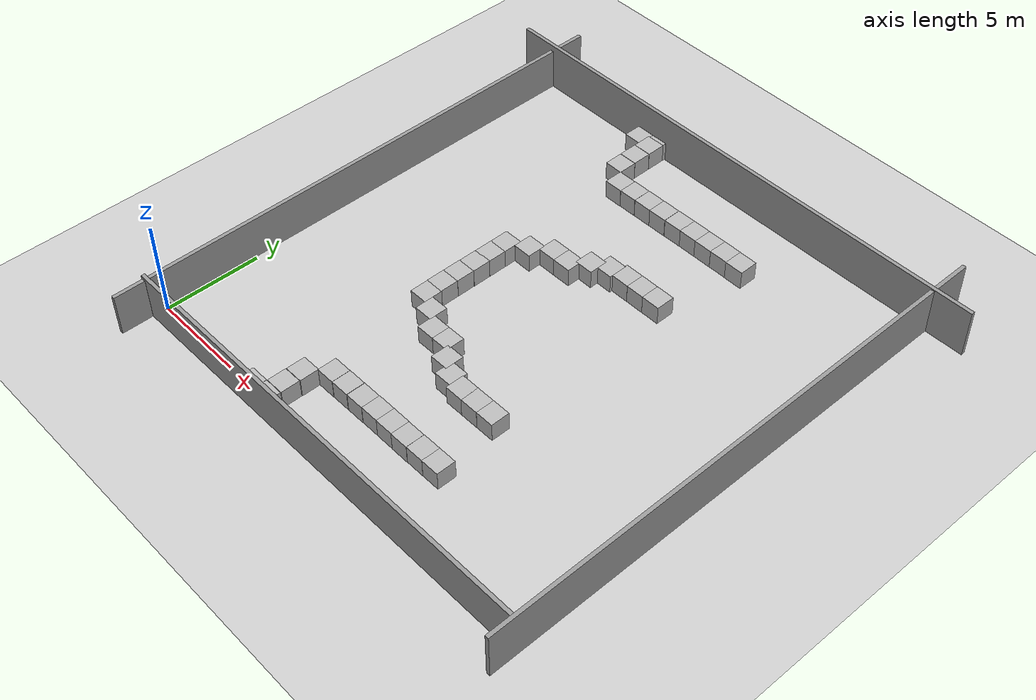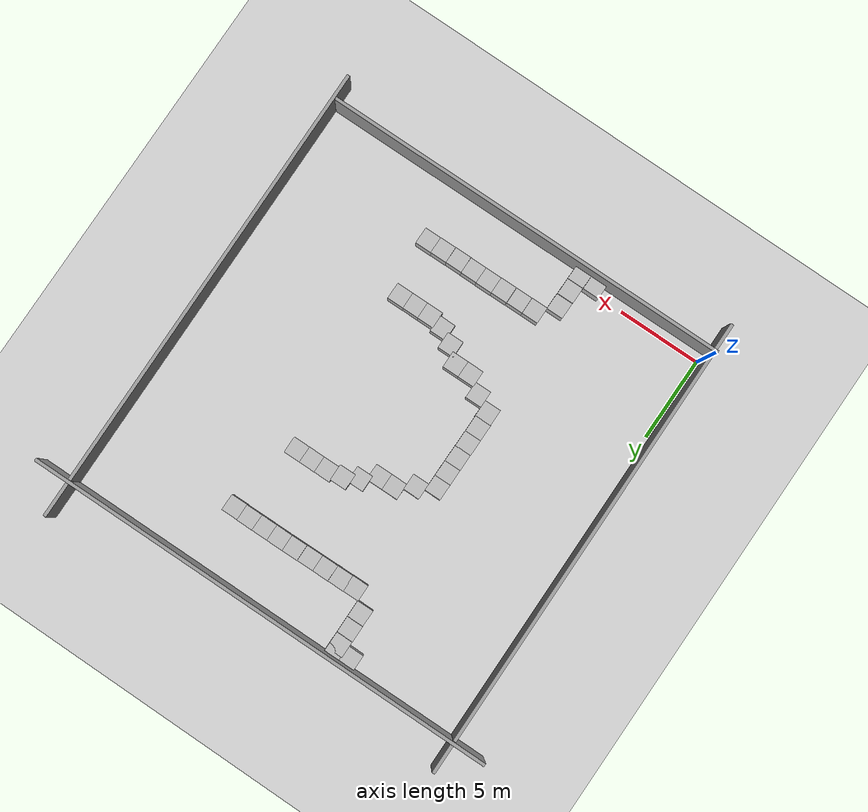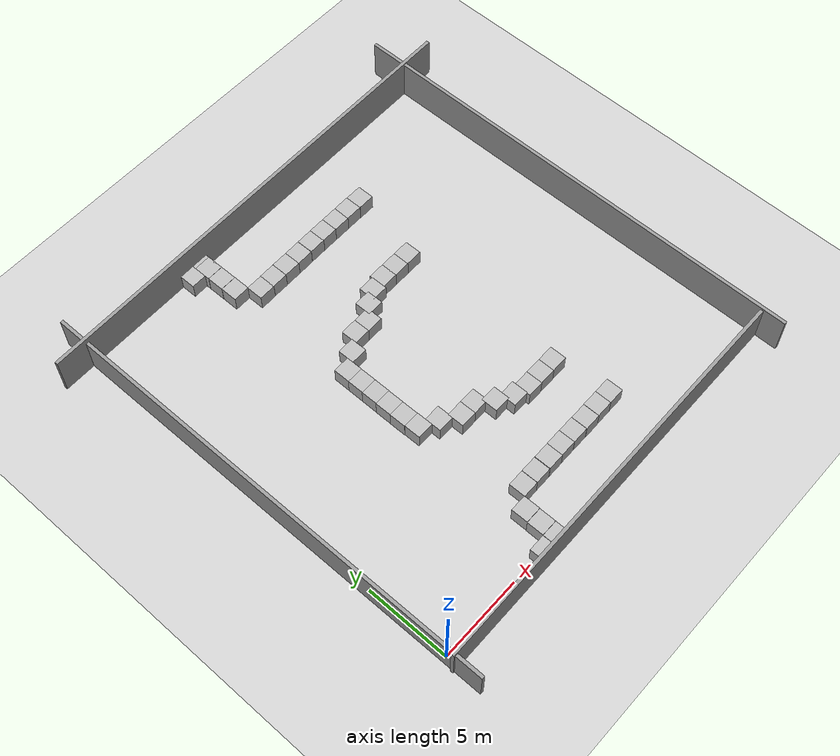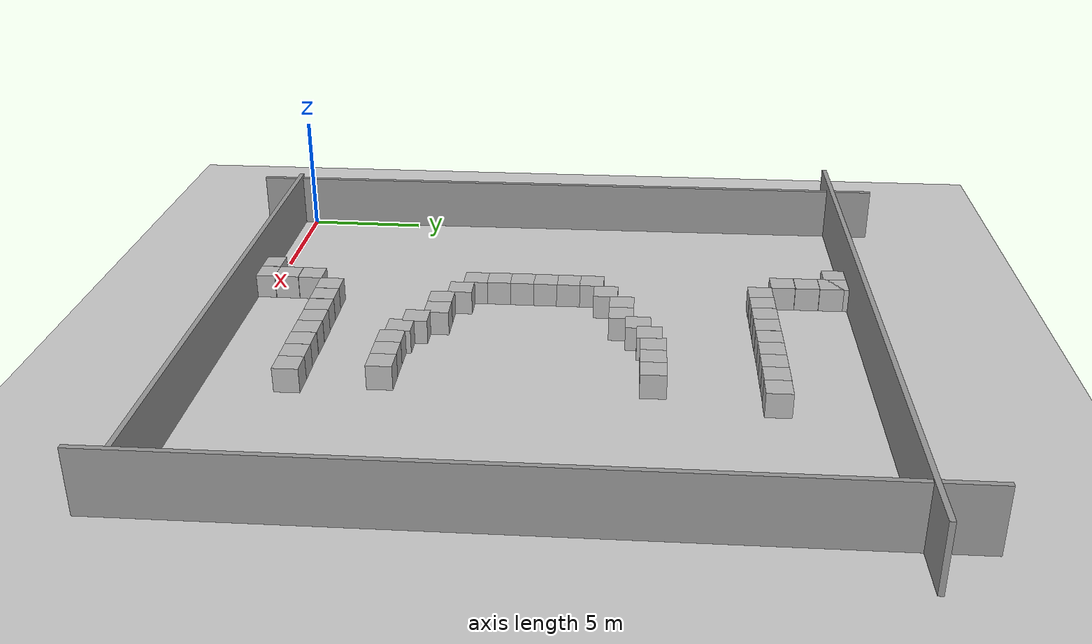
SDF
<sdf version="1.6">
 <world name="default">
  <light name="sun" type="directional">
   <pose>0 0 10 0 -0 0</pose>
   <diffuse>0.8 0.8 0.8 1</diffuse>
   <specular>0.2 0.2 0.2 1</specular>
   <attenuation>
    <range>1000</range>
    <constant>0.9</constant>
    <linear>0.01</linear>
    <quadratic>0.001</quadratic>
   </attenuation>
   <direction>-0.5 0.1 -0.9</direction>
  </light>
  <model name="ground_plane">
   <static>1</static>
   <link name="link">
    <collision name="collision">
     <geometry><plane><normal>0 0 1</normal><size>100 100</size></plane></geometry>
     <surface><friction><ode><mu>50</mu><mu2>25</mu2></ode></friction></surface>
    </collision>
    <visual name="visual">
     <cast_shadows>0</cast_shadows>
     <geometry><plane><normal>0 0 1</normal><size>100 100</size></plane></geometry>
     <material>
      <script><uri>file://media/materials/scripts/gazebo.material</uri><name>Gazebo/Grey</name></script>
     </material>
    </visual>
    <velocity_decay><linear>0</linear><angular>0</angular></velocity_decay>
   </link>
  </model>
  <physics name="default_physics" default="0" type="ode">
   <max_step_size>0.001</max_step_size>
   <real_time_factor>1</real_time_factor>
   <real_time_update_rate>1000</real_time_update_rate>
  </physics>
  <scene><ambient>0.4 0.4 0.4 1</ambient><background>0.7 0.7 0.7 1</background><shadows>0</shadows></scene>
  <spherical_coordinates>
   <surface_model>EARTH_WGS84</surface_model>
   <latitude_deg>0</latitude_deg>
   <longitude_deg>0</longitude_deg>
   <elevation>0</elevation>
   <heading_deg>0</heading_deg>
  </spherical_coordinates>
  <gravity>0 0 -9.8</gravity>
  <magnetic_field>6e-06 2.3e-05 -4.2e-05</magnetic_field>
  <atmosphere type="adiabatic"/>
  <model name="grey_wall_6_0_clone">
   <link name="link">
    <pose>11.2261 0.490097 1.4 0 -0 0</pose>
    <velocity_decay><linear>0</linear><angular>0</angular></velocity_decay>
    <inertial>
     <inertia><ixx>nan</ixx><ixy>0</ixy><ixz>0</ixz><iyy>nan</iyy><iyz>0</iyz><izz>nan</izz></inertia>
     <mass>0</mass>
    </inertial>
    <visual name="visual">
     <cast_shadows>0</cast_shadows>
     <geometry><box><size>28.8883 0.2 2.63649</size></box></geometry>
     <material>
      <script>
       <uri>model://grey_wall/materials/scripts</uri>
       <uri>model://grey_wall/materials/textures</uri>
       <name>vrc/grey_wall</name>
      </script>
      <ambient>1 1 1 1</ambient>
      <diffuse>1 1 1 1</diffuse>
      <specular>0 0 0 1</specular>
      <emissive>0 0 0 1</emissive>
     </material>
    </visual>
    <collision name="collision">
     <geometry><box><size>28.8883 0.2 2.63649</size></box></geometry>
     <surface>
      <friction>
       <ode><mu>1</mu><mu2>1</mu2><fdir1>0 0 0</fdir1><slip1>0</slip1><slip2>0</slip2></ode>
       <torsional>
        <coefficient>1</coefficient>
        <patch_radius>0</patch_radius>
        <surface_radius>0</surface_radius>
        <use_patch_radius>1</use_patch_radius>
        <ode><slip>0</slip></ode>
       </torsional>
      </friction>
      <bounce><restitution_coefficient>0</restitution_coefficient><threshold>1e+06</threshold></bounce>
      <contact>
       <collide_without_contact>0</collide_without_contact>
       <collide_without_contact_bitmask>1</collide_without_contact_bitmask>
       <collide_bitmask>1</collide_bitmask>
       <ode>
        <soft_cfm>0</soft_cfm>
        <soft_erp>0.2</soft_erp>
        <kp>1e+13</kp>
        <kd>1</kd>
        <max_vel>0.01</max_vel>
        <min_depth>0</min_depth>
       </ode>
       <bullet>
        <split_impulse>1</split_impulse>
        <split_impulse_penetration_threshold>-0.01</split_impulse_penetration_threshold>
        <soft_cfm>0</soft_cfm>
        <soft_erp>0.2</soft_erp>
        <kp>1e+13</kp>
        <kd>1</kd>
       </bullet>
      </contact>
     </surface>
    </collision>
   </link>
   <static>1</static>
   <pose>0.259326 0.833086 -0.505022 0 -0 1.57597</pose>
  </model>
  <model name="grey_wall_6_0_clone_0">
   <link name="link">
    <pose>11.2261 0.490097 1.4 0 -0 0</pose>
    <velocity_decay><linear>0</linear><angular>0</angular></velocity_decay>
    <inertial>
     <inertia><ixx>nan</ixx><ixy>0</ixy><ixz>0</ixz><iyy>nan</iyy><iyz>0</iyz><izz>nan</izz></inertia>
     <mass>0</mass>
    </inertial>
    <visual name="visual">
     <cast_shadows>0</cast_shadows>
     <geometry><box><size>28.8883 0.2 2.63649</size></box></geometry>
     <material>
      <script>
       <uri>model://grey_wall/materials/scripts</uri>
       <uri>model://grey_wall/materials/textures</uri>
       <name>vrc/grey_wall</name>
      </script>
      <ambient>1 1 1 1</ambient>
      <diffuse>1 1 1 1</diffuse>
      <specular>0 0 0 1</specular>
      <emissive>0 0 0 1</emissive>
     </material>
    </visual>
    <collision name="collision">
     <geometry><box><size>28.8883 0.2 2.63649</size></box></geometry>
     <surface>
      <friction>
       <ode><mu>1</mu><mu2>1</mu2><fdir1>0 0 0</fdir1><slip1>0</slip1><slip2>0</slip2></ode>
       <torsional>
        <coefficient>1</coefficient>
        <patch_radius>0</patch_radius>
        <surface_radius>0</surface_radius>
        <use_patch_radius>1</use_patch_radius>
        <ode><slip>0</slip></ode>
       </torsional>
      </friction>
      <bounce><restitution_coefficient>0</restitution_coefficient><threshold>1e+06</threshold></bounce>
      <contact>
       <collide_without_contact>0</collide_without_contact>
       <collide_without_contact_bitmask>1</collide_without_contact_bitmask>
       <collide_bitmask>1</collide_bitmask>
       <ode>
        <soft_cfm>0</soft_cfm>
        <soft_erp>0.2</soft_erp>
        <kp>1e+13</kp>
        <kd>1</kd>
        <max_vel>0.01</max_vel>
        <min_depth>0</min_depth>
       </ode>
       <bullet>
        <split_impulse>1</split_impulse>
        <split_impulse_penetration_threshold>-0.01</split_impulse_penetration_threshold>
        <soft_cfm>0</soft_cfm>
        <soft_erp>0.2</soft_erp>
        <kp>1e+13</kp>
        <kd>1</kd>
       </bullet>
      </contact>
     </surface>
    </collision>
   </link>
   <static>1</static>
   <pose>23.3329 25.2467 -0.15098 0 0 -3.13457</pose>
  </model>
  <model name="grey_wall_6_0_clone_clone">
   <link name="link">
    <pose>11.2261 0.490097 1.4 0 -0 0</pose>
    <velocity_decay><linear>0</linear><angular>0</angular></velocity_decay>
    <inertial>
     <inertia><ixx>nan</ixx><ixy>0</ixy><ixz>0</ixz><iyy>nan</iyy><iyz>0</iyz><izz>nan</izz></inertia>
     <mass>0</mass>
    </inertial>
    <visual name="visual">
     <cast_shadows>0</cast_shadows>
     <geometry><box><size>28.8883 0.2 2.63649</size></box></geometry>
     <material>
      <script>
       <uri>model://grey_wall/materials/scripts</uri>
       <uri>model://grey_wall/materials/textures</uri>
       <name>vrc/grey_wall</name>
      </script>
      <ambient>1 1 1 1</ambient>
      <diffuse>1 1 1 1</diffuse>
      <specular>0 0 0 1</specular>
      <emissive>0 0 0 1</emissive>
     </material>
    </visual>
    <collision name="collision">
     <geometry><box><size>28.8883 0.2 2.63649</size></box></geometry>
     <surface>
      <friction>
       <ode><mu>1</mu><mu2>1</mu2><fdir1>0 0 0</fdir1><slip1>0</slip1><slip2>0</slip2></ode>
       <torsional>
        <coefficient>1</coefficient>
        <patch_radius>0</patch_radius>
        <surface_radius>0</surface_radius>
        <use_patch_radius>1</use_patch_radius>
        <ode><slip>0</slip></ode>
       </torsional>
      </friction>
      <bounce><restitution_coefficient>0</restitution_coefficient><threshold>1e+06</threshold></bounce>
      <contact>
       <collide_without_contact>0</collide_without_contact>
       <collide_without_contact_bitmask>1</collide_without_contact_bitmask>
       <collide_bitmask>1</collide_bitmask>
       <ode>
        <soft_cfm>0</soft_cfm>
        <soft_erp>0.2</soft_erp>
        <kp>1e+13</kp>
        <kd>1</kd>
        <max_vel>0.01</max_vel>
        <min_depth>0</min_depth>
       </ode>
       <bullet>
        <split_impulse>1</split_impulse>
        <split_impulse_penetration_threshold>-0.01</split_impulse_penetration_threshold>
        <soft_cfm>0</soft_cfm>
        <soft_erp>0.2</soft_erp>
        <kp>1e+13</kp>
        <kd>1</kd>
       </bullet>
      </contact>
     </surface>
    </collision>
   </link>
   <static>1</static>
   <pose>25.0346 1.33079 -0.2274 0 -0 1.57597</pose>
  </model>
  <model name="obby">
   <pose>8.00108 -0.189962 0.5 0 -0 0</pose>
   <static>1</static>
   <link name="link">
    <inertial>
     <mass>1</mass>
     <inertia><ixx>0.083</ixx><ixy>0</ixy><ixz>0</ixz><iyy>0.083</iyy><iyz>0</iyz><izz>0.083</izz></inertia>
    </inertial>
    <collision name="collision"><geometry><box><size>1 1 1</size></box></geometry></collision>
    <visual name="visual"><geometry><box><size>1 1 1</size></box></geometry></visual>
   </link>
  </model>
  <model name="obby1_clone">
   <pose>8.00356 0.82391 0.499995 0 -1e-05 0.007022</pose>
   <static>1</static>
   <link name="link">
    <inertial>
     <mass>1</mass>
     <inertia><ixx>0.083</ixx><ixy>0</ixy><ixz>0</ixz><iyy>0.083</iyy><iyz>0</iyz><izz>0.083</izz></inertia>
    </inertial>
    <collision name="collision"><geometry><box><size>1 1 1</size></box></geometry></collision>
    <visual name="visual"><geometry><box><size>1 1 1</size></box></geometry></visual>
   </link>
  </model>
  <model name="obby1_clone_clone">
   <pose>8.01546 1.84075 0.499989 1e-05 -0 0.007022</pose>
   <static>1</static>
   <link name="link">
    <inertial>
     <mass>1</mass>
     <inertia><ixx>0.083</ixx><ixy>0</ixy><ixz>0</ixz><iyy>0.083</iyy><iyz>0</iyz><izz>0.083</izz></inertia>
    </inertial>
    <collision name="collision"><geometry><box><size>1 1 1</size></box></geometry></collision>
    <visual name="visual"><geometry><box><size>1 1 1</size></box></geometry></visual>
   </link>
  </model>
  <model name="obby1_clone_clone_0">
   <pose>9.00055 2.81608 0.499989 1e-05 -0 0.007022</pose>
   <static>1</static>
   <static>1</static>
   <link name="link">
    <inertial>
     <mass>1</mass>
     <inertia><ixx>0.083</ixx><ixy>0</ixy><ixz>0</ixz><iyy>0.083</iyy><iyz>0</iyz><izz>0.083</izz></inertia>
    </inertial>
    <collision name="collision"><geometry><box><size>1 1 1</size></box></geometry></collision>
    <visual name="visual"><geometry><box><size>1 1 1</size></box></geometry></visual>
   </link>
  </model>
  <model name="obby1_clone_clone_1">
   <pose>10.0086 2.83149 0.499989 1e-05 -0 0.007022</pose>
   <static>1</static>
   <link name="link">
    <inertial>
     <mass>1</mass>
     <inertia><ixx>0.083</ixx><ixy>0</ixy><ixz>0</ixz><iyy>0.083</iyy><iyz>0</iyz><izz>0.083</izz></inertia>
    </inertial>
    <collision name="collision"><geometry><box><size>1 1 1</size></box></geometry></collision>
    <visual name="visual"><geometry><box><size>1 1 1</size></box></geometry></visual>
   </link>
  </model>
  <model name="obby1_clone_clone_1_clone">
   <pose>11.0302 2.84242 0.5 0 -0 0.007022</pose>
   <static>1</static>
   <link name="link">
    <inertial>
     <mass>1</mass>
     <inertia><ixx>0.083</ixx><ixy>0</ixy><ixz>0</ixz><iyy>0.083</iyy><iyz>0</iyz><izz>0.083</izz></inertia>
    </inertial>
    <collision name="collision"><geometry><box><size>1 1 1</size></box></geometry></collision>
    <visual name="visual"><geometry><box><size>1 1 1</size></box></geometry></visual>
   </link>
  </model>
  <model name="obby1_clone_clone_1_clone_clone">
   <pose>12.028 2.86025 0.5 0 -0 0.007022</pose>
   <static>1</static>
   <link name="link">
    <inertial>
     <mass>1</mass>
     <inertia><ixx>0.083</ixx><ixy>0</ixy><ixz>0</ixz><iyy>0.083</iyy><iyz>0</iyz><izz>0.083</izz></inertia>
    </inertial>
    <collision name="collision"><geometry><box><size>1 1 1</size></box></geometry></collision>
    <visual name="visual"><geometry><box><size>1 1 1</size></box></geometry></visual>
   </link>
  </model>
  <model name="obby_clone_clone_1_clone_clone_0">
   <pose>13.0211 2.86176 0.5 0 -0 0.007022</pose>
   <static>1</static>
   <link name="link">
    <inertial>
     <mass>1</mass>
     <inertia><ixx>0.083</ixx><ixy>0</ixy><ixz>0</ixz><iyy>0.083</iyy><iyz>0</iyz><izz>0.083</izz></inertia>
    </inertial>
    <collision name="collision"><geometry><box><size>1 1 1</size></box></geometry></collision>
    <visual name="visual"><geometry><box><size>1 1 1</size></box></geometry></visual>
   </link>
  </model>
  <model name="obby_clone_clone_1_clone_clone_1">
   <pose>14.0232 2.85892 0.5 0 -0 0.007022</pose>
   <static>1</static>
   <link name="link">
    <inertial>
     <mass>1</mass>
     <inertia><ixx>0.083</ixx><ixy>0</ixy><ixz>0</ixz><iyy>0.083</iyy><iyz>0</iyz><izz>0.083</izz></inertia>
    </inertial>
    <collision name="collision"><geometry><box><size>1 1 1</size></box></geometry></collision>
    <visual name="visual"><geometry><box><size>1 1 1</size></box></geometry></visual>
   </link>
  </model>
  <model name="obby_clone_clone_1_clone_clone_2">
   <pose>15.0273 2.87774 0.5 0 -0 0.007022</pose>
   <static>1</static>
   <link name="link">
    <inertial>
     <mass>1</mass>
     <inertia><ixx>0.083</ixx><ixy>0</ixy><ixz>0</ixz><iyy>0.083</iyy><iyz>0</iyz><izz>0.083</izz></inertia>
    </inertial>
    <collision name="collision"><geometry><box><size>1 1 1</size></box></geometry></collision>
    <visual name="visual"><geometry><box><size>1 1 1</size></box></geometry></visual>
   </link>
  </model>
  <model name="obby_clone_clone_1_clone_clone_3">
   <pose>16.0113 2.88856 0.5 0 -0 0.007022</pose>
   <static>1</static>
   <link name="link">
    <inertial>
     <mass>1</mass>
     <inertia><ixx>0.083</ixx><ixy>0</ixy><ixz>0</ixz><iyy>0.083</iyy><iyz>0</iyz><izz>0.083</izz></inertia>
    </inertial>
    <collision name="collision"><geometry><box><size>1 1 1</size></box></geometry></collision>
    <visual name="visual"><geometry><box><size>1 1 1</size></box></geometry></visual>
   </link>
  </model>
  <model name="obby_clone_clone_1_clone_clone_4">
   <pose>7.94105 13.8273 0.5 0 -0 0.007022</pose>
   <static>1</static>
   <link name="link">
    <inertial>
     <mass>1</mass>
     <inertia><ixx>0.083</ixx><ixy>0</ixy><ixz>0</ixz><iyy>0.083</iyy><iyz>0</iyz><izz>0.083</izz></inertia>
    </inertial>
    <collision name="collision"><geometry><box><size>1 1 1</size></box></geometry></collision>
    <visual name="visual"><geometry><box><size>1 1 1</size></box></geometry></visual>
   </link>
  </model>
  <model name="obby_clone_clone_1_clone_clone_5">
   <pose>7.53911 23.8429 0.5 0 -0 0.007022</pose>
   <static>1</static>
   <link name="link">
    <inertial>
     <mass>1</mass>
     <inertia><ixx>0.083</ixx><ixy>0</ixy><ixz>0</ixz><iyy>0.083</iyy><iyz>0</iyz><izz>0.083</izz></inertia>
    </inertial>
    <collision name="collision"><geometry><box><size>1 1 1</size></box></geometry></collision>
    <visual name="visual"><geometry><box><size>1 1 1</size></box></geometry></visual>
   </link>
  </model>
  <model name="obby_clone_clone_1_clone_clone_6">
   <pose>7.54567 22.8332 0.5 0 -0 0.007022</pose>
   <static>1</static>
   <link name="link">
    <inertial>
     <mass>1</mass>
     <inertia><ixx>0.083</ixx><ixy>0</ixy><ixz>0</ixz><iyy>0.083</iyy><iyz>0</iyz><izz>0.083</izz></inertia>
    </inertial>
    <collision name="collision"><geometry><box><size>1 1 1</size></box></geometry></collision>
    <visual name="visual"><geometry><box><size>1 1 1</size></box></geometry></visual>
   </link>
  </model>
  <model name="obby_clone_clone_1_clone_clone_20_clone_2">
   <pose>8.93311 14.4469 0.499995 1e-05 -0 0.007022</pose>
   <static>1</static>
   <link name="link">
    <inertial>
     <mass>1</mass>
     <inertia><ixx>0.083</ixx><ixy>0</ixy><ixz>0</ixz><iyy>0.083</iyy><iyz>0</iyz><izz>0.083</izz></inertia>
    </inertial>
    <collision name="collision"><geometry><box><size>1 1 1</size></box></geometry></collision>
    <visual name="visual"><geometry><box><size>1 1 1</size></box></geometry></visual>
   </link>
  </model>
  <model name="obby_clone_clone_1_clone_clone_20_clone_9_clone_0">
   <pose>9.89912 15.1321 0.499986 -1e-05 -0 0.007881</pose>
   <static>1</static>
   <link name="link">
    <inertial>
     <mass>1</mass>
     <inertia><ixx>0.083</ixx><ixy>0</ixy><ixz>0</ixz><iyy>0.083</iyy><iyz>0</iyz><izz>0.083</izz></inertia>
    </inertial>
    <collision name="collision"><geometry><box><size>1 1 1</size></box></geometry></collision>
    <visual name="visual"><geometry><box><size>1 1 1</size></box></geometry></visual>
   </link>
  </model>
  <model name="obby_clone_clone_1_clone_clone_20_clone_9_clone_3">
   <pose>10.8951 15.1395 0.499995 0 1e-05 0.008043</pose>
   <static>1</static>
   <link name="link">
    <inertial>
     <mass>1</mass>
     <inertia><ixx>0.083</ixx><ixy>0</ixy><ixz>0</ixz><iyy>0.083</iyy><iyz>0</iyz><izz>0.083</izz></inertia>
    </inertial>
    <collision name="collision"><geometry><box><size>1 1 1</size></box></geometry></collision>
    <visual name="visual"><geometry><box><size>1 1 1</size></box></geometry></visual>
   </link>
  </model>
  <model name="obby_clone_clone_1_clone_clone_20_clone_9_clone_3_clone_2">
   <pose>11.6896 15.8237 0.5 0 -0 0.008044</pose>
   <static>1</static>
   <link name="link">
    <inertial>
     <mass>1</mass>
     <inertia><ixx>0.083</ixx><ixy>0</ixy><ixz>0</ixz><iyy>0.083</iyy><iyz>0</iyz><izz>0.083</izz></inertia>
    </inertial>
    <collision name="collision"><geometry><box><size>1 1 1</size></box></geometry></collision>
    <visual name="visual"><geometry><box><size>1 1 1</size></box></geometry></visual>
   </link>
  </model>
  <model name="grey_wall_6_0_clone_0_clone">
   <link name="link">
    <pose>11.2261 0.490097 1.4 0 -0 0</pose>
    <velocity_decay><linear>0</linear><angular>0</angular></velocity_decay>
    <inertial>
     <inertia><ixx>nan</ixx><ixy>0</ixy><ixz>0</ixz><iyy>nan</iyy><iyz>0</iyz><izz>nan</izz></inertia>
     <mass>0</mass>
    </inertial>
    <visual name="visual">
     <cast_shadows>0</cast_shadows>
     <geometry><box><size>24.8883 0.2 2.63649</size></box></geometry>
     <material>
      <script>
       <uri>model://grey_wall/materials/scripts</uri>
       <uri>model://grey_wall/materials/textures</uri>
       <name>vrc/grey_wall</name>
      </script>
      <ambient>1 1 1 1</ambient>
      <diffuse>1 1 1 1</diffuse>
      <specular>0 0 0 1</specular>
      <emissive>0 0 0 1</emissive>
     </material>
    </visual>
    <collision name="collision">
     <geometry><box><size>24.8883 0.2 2.63649</size></box></geometry>
     <surface>
      <friction>
       <ode><mu>1</mu><mu2>1</mu2><fdir1>0 0 0</fdir1><slip1>0</slip1><slip2>0</slip2></ode>
       <torsional>
        <coefficient>1</coefficient>
        <patch_radius>0</patch_radius>
        <surface_radius>0</surface_radius>
        <use_patch_radius>1</use_patch_radius>
        <ode><slip>0</slip></ode>
       </torsional>
      </friction>
      <bounce><restitution_coefficient>0</restitution_coefficient><threshold>1e+06</threshold></bounce>
      <contact>
       <collide_without_contact>0</collide_without_contact>
       <collide_without_contact_bitmask>1</collide_without_contact_bitmask>
       <collide_bitmask>1</collide_bitmask>
       <ode>
        <soft_cfm>0</soft_cfm>
        <soft_erp>0.2</soft_erp>
        <kp>1e+13</kp>
        <kd>1</kd>
        <max_vel>0.01</max_vel>
        <min_depth>0</min_depth>
       </ode>
       <bullet>
        <split_impulse>1</split_impulse>
        <split_impulse_penetration_threshold>-0.01</split_impulse_penetration_threshold>
        <soft_cfm>0</soft_cfm>
        <soft_erp>0.2</soft_erp>
        <kp>1e+13</kp>
        <kd>1</kd>
       </bullet>
      </contact>
     </surface>
    </collision>
   </link>
   <static>1</static>
   <pose>23.2592 1.1e-05 -0.36029 0 0 -3.13457</pose>
  </model>
  <model name="obby_clone_clone_1_clone_clone_20_clone_9_clone_3_clone_0_clone">
   <pose>7.5574 21.8237 0.499995 -1e-05 0 0.005061</pose>
   <static>1</static>
   <link name="link">
    <inertial>
     <mass>1</mass>
     <inertia><ixx>0.083</ixx><ixy>0</ixy><ixz>0</ixz><iyy>0.083</iyy><iyz>0</iyz><izz>0.083</izz></inertia>
    </inertial>
    <collision name="collision"><geometry><box><size>1 1 1</size></box></geometry></collision>
    <visual name="visual"><geometry><box><size>1 1 1</size></box></geometry></visual>
   </link>
  </model>
  <model name="obby_clone_clone_1_clone_clone_20_clone_9_clone_3_clone_0_clone_0">
   <pose>8.54028 20.8472 0.499995 -1e-05 0 0.005061</pose>
   <static>1</static>
   <link name="link">
    <inertial>
     <mass>1</mass>
     <inertia><ixx>0.083</ixx><ixy>0</ixy><ixz>0</ixz><iyy>0.083</iyy><iyz>0</iyz><izz>0.083</izz></inertia>
    </inertial>
    <collision name="collision"><geometry><box><size>1 1 1</size></box></geometry></collision>
    <visual name="visual"><geometry><box><size>1 1 1</size></box></geometry></visual>
   </link>
  </model>
  <model name="obby_clone_clone_1_clone_clone_20_clone_9_clone_3_clone_0_clone_1">
   <pose>9.5035 20.8677 0.499995 -1e-05 0 0.005061</pose>
   <static>1</static>
   <link name="link">
    <inertial>
     <mass>1</mass>
     <inertia><ixx>0.083</ixx><ixy>0</ixy><ixz>0</ixz><iyy>0.083</iyy><iyz>0</iyz><izz>0.083</izz></inertia>
    </inertial>
    <collision name="collision"><geometry><box><size>1 1 1</size></box></geometry></collision>
    <visual name="visual"><geometry><box><size>1 1 1</size></box></geometry></visual>
   </link>
  </model>
  <model name="obby_clone_clone_1_clone_clone_20_clone_9_clone_3_clone_0_clone_2">
   <pose>10.507 20.8839 0.499995 -1e-05 0 0.005061</pose>
   <static>1</static>
   <link name="link">
    <inertial>
     <mass>1</mass>
     <inertia><ixx>0.083</ixx><ixy>0</ixy><ixz>0</ixz><iyy>0.083</iyy><iyz>0</iyz><izz>0.083</izz></inertia>
    </inertial>
    <collision name="collision"><geometry><box><size>1 1 1</size></box></geometry></collision>
    <visual name="visual"><geometry><box><size>1 1 1</size></box></geometry></visual>
   </link>
  </model>
  <model name="obby_clone_clone_1_clone_clone_20_clone_9_clone_3_clone_0_clone_3">
   <pose>11.502 20.8963 0.499995 -1e-05 -0 0.013422</pose>
   <static>1</static>
   <link name="link">
    <inertial>
     <mass>1</mass>
     <inertia><ixx>0.083</ixx><ixy>0</ixy><ixz>0</ixz><iyy>0.083</iyy><iyz>0</iyz><izz>0.083</izz></inertia>
    </inertial>
    <collision name="collision"><geometry><box><size>1 1 1</size></box></geometry></collision>
    <visual name="visual"><geometry><box><size>1 1 1</size></box></geometry></visual>
   </link>
  </model>
  <model name="obby_clone_clone_1_clone_clone_20_clone_9_clone_3_clone_0_clone_4">
   <pose>12.5136 20.9174 0.499995 1e-05 0 0.014328</pose>
   <static>1</static>
   <link name="link">
    <inertial>
     <mass>1</mass>
     <inertia><ixx>0.083</ixx><ixy>0</ixy><ixz>0</ixz><iyy>0.083</iyy><iyz>0</iyz><izz>0.083</izz></inertia>
    </inertial>
    <collision name="collision"><geometry><box><size>1 1 1</size></box></geometry></collision>
    <visual name="visual"><geometry><box><size>1 1 1</size></box></geometry></visual>
   </link>
  </model>
  <model name="obby_clone_clone_1_clone_clone_20_clone_9_clone_3_clone_0_clone_5">
   <pose>13.4919 20.9304 0.499995 1e-05 -0 0.005061</pose>
   <static>1</static>
   <link name="link">
    <inertial>
     <mass>1</mass>
     <inertia><ixx>0.083</ixx><ixy>0</ixy><ixz>0</ixz><iyy>0.083</iyy><iyz>0</iyz><izz>0.083</izz></inertia>
    </inertial>
    <collision name="collision"><geometry><box><size>1 1 1</size></box></geometry></collision>
    <visual name="visual"><geometry><box><size>1 1 1</size></box></geometry></visual>
   </link>
  </model>
  <model name="obby_clone_clone_1_clone_clone_20_clone_9_clone_3_clone_0_clone_6">
   <pose>14.4781 20.9353 0.499995 1e-05 -0 0.005061</pose>
   <static>1</static>
   <link name="link">
    <inertial>
     <mass>1</mass>
     <inertia><ixx>0.083</ixx><ixy>0</ixy><ixz>0</ixz><iyy>0.083</iyy><iyz>0</iyz><izz>0.083</izz></inertia>
    </inertial>
    <collision name="collision"><geometry><box><size>1 1 1</size></box></geometry></collision>
    <visual name="visual"><geometry><box><size>1 1 1</size></box></geometry></visual>
   </link>
  </model>
  <model name="obby_clone_clone_1_clone_clone_20_clone_9_clone_3_clone_0_clone_6_clone">
   <pose>15.4646 20.9454 0.499995 -1e-05 0 0.005061</pose>
   <static>1</static>
   <link name="link">
    <inertial>
     <mass>1</mass>
     <inertia><ixx>0.083</ixx><ixy>0</ixy><ixz>0</ixz><iyy>0.083</iyy><iyz>0</iyz><izz>0.083</izz></inertia>
    </inertial>
    <collision name="collision"><geometry><box><size>1 1 1</size></box></geometry></collision>
    <visual name="visual"><geometry><box><size>1 1 1</size></box></geometry></visual>
   </link>
  </model>
  <model name="obby_clone_clone_1_clone_clone_20_clone_9_clone_3_clone_0_clone_6_clone_0">
   <pose>16.461 20.9379 0.5 0 -0 0.005061</pose>
   <static>1</static>
   <link name="link">
    <inertial>
     <mass>1</mass>
     <inertia><ixx>0.083</ixx><ixy>0</ixy><ixz>0</ixz><iyy>0.083</iyy><iyz>0</iyz><izz>0.083</izz></inertia>
    </inertial>
    <collision name="collision"><geometry><box><size>1 1 1</size></box></geometry></collision>
    <visual name="visual"><geometry><box><size>1 1 1</size></box></geometry></visual>
   </link>
  </model>
  <model name="obby_clone_clone_1_clone_clone_20_clone_9_clone_3_clone_0_clone_6_clone_1">
   <pose>12.5126 16.2798 0.5 0 -0 0.005061</pose>
   <static>1</static>
   <link name="link">
    <inertial>
     <mass>1</mass>
     <inertia><ixx>0.083</ixx><ixy>0</ixy><ixz>0</ixz><iyy>0.083</iyy><iyz>0</iyz><izz>0.083</izz></inertia>
    </inertial>
    <collision name="collision"><geometry><box><size>1 1 1</size></box></geometry></collision>
    <visual name="visual"><geometry><box><size>1 1 1</size></box></geometry></visual>
   </link>
  </model>
  <model name="obby_clone_clone_1_clone_clone_20_clone_9_clone_3_clone_0_clone_6_clone_2">
   <pose>13.4734 16.4271 0.499966 -1e-05 0 0.005061</pose>
   <static>1</static>
   <link name="link">
    <inertial>
     <mass>1</mass>
     <inertia><ixx>0.083</ixx><ixy>0</ixy><ixz>0</ixz><iyy>0.083</iyy><iyz>0</iyz><izz>0.083</izz></inertia>
    </inertial>
    <collision name="collision"><geometry><box><size>1 1 1</size></box></geometry></collision>
    <visual name="visual"><geometry><box><size>1 1 1</size></box></geometry></visual>
   </link>
  </model>
  <model name="obby_clone_clone_1_clone_clone_20_clone_9_clone_3_clone_0_clone_6_clone_3">
   <pose>14.4508 16.4365 0.499966 -1e-05 0 0.005061</pose>
   <static>1</static>
   <link name="link">
    <inertial>
     <mass>1</mass>
     <inertia><ixx>0.083</ixx><ixy>0</ixy><ixz>0</ixz><iyy>0.083</iyy><iyz>0</iyz><izz>0.083</izz></inertia>
    </inertial>
    <collision name="collision"><geometry><box><size>1 1 1</size></box></geometry></collision>
    <visual name="visual"><geometry><box><size>1 1 1</size></box></geometry></visual>
   </link>
  </model>
  <model name="obby_clone_clone_1_clone_clone_20_clone_9_clone_3_clone_0_clone_6_clone_4">
   <pose>15.4427 16.4461 0.5 0 -0 0.005061</pose>
   <static>1</static>
   <link name="link">
    <inertial>
     <mass>1</mass>
     <inertia><ixx>0.083</ixx><ixy>0</ixy><ixz>0</ixz><iyy>0.083</iyy><iyz>0</iyz><izz>0.083</izz></inertia>
    </inertial>
    <collision name="collision"><geometry><box><size>1 1 1</size></box></geometry></collision>
    <visual name="visual"><geometry><box><size>1 1 1</size></box></geometry></visual>
   </link>
  </model>
  <model name="obby_clone_clone_1_clone_clone_20_clone_9_clone_3_clone_0_clone_6_clone_5">
   <pose>6.99148 -0.196711 0.5 0 -0 0.005061</pose>
   <static>1</static>
   <link name="link">
    <inertial>
     <mass>1</mass>
     <inertia><ixx>0.083</ixx><ixy>0</ixy><ixz>0</ixz><iyy>0.083</iyy><iyz>0</iyz><izz>0.083</izz></inertia>
    </inertial>
    <collision name="collision"><geometry><box><size>1 1 1</size></box></geometry></collision>
    <visual name="visual"><geometry><box><size>1 1 1</size></box></geometry></visual>
   </link>
  </model>
  <model name="obby_clone_clone_1_clone_clone_3_clone">
   <pose>7.93633 10.9 0.5 0 -0 0.007022</pose>
   <static>1</static>
   <link name="link">
    <inertial>
     <mass>1</mass>
     <inertia><ixx>0.083</ixx><ixy>0</ixy><ixz>0</ixz><iyy>0.083</iyy><iyz>0</iyz><izz>0.083</izz></inertia>
    </inertial>
    <collision name="collision"><geometry><box><size>1 1 1</size></box></geometry></collision>
    <visual name="visual"><geometry><box><size>1 1 1</size></box></geometry></visual>
   </link>
  </model>
  <model name="obby_clone_clone_1_clone_clone_3_clone_clone">
   <pose>7.94116 11.8836 0.5 0 -0 0.007022</pose>
   <static>1</static>
   <link name="link">
    <inertial>
     <mass>1</mass>
     <inertia><ixx>0.083</ixx><ixy>0</ixy><ixz>0</ixz><iyy>0.083</iyy><iyz>0</iyz><izz>0.083</izz></inertia>
    </inertial>
    <collision name="collision"><geometry><box><size>1 1 1</size></box></geometry></collision>
    <visual name="visual"><geometry><box><size>1 1 1</size></box></geometry></visual>
   </link>
  </model>
  <model name="obby_clone_clone_1_clone_clone_3_clone_clone_0">
   <pose>7.94171 12.8502 0.5 0 -0 0.007022</pose>
   <static>1</static>
   <link name="link">
    <inertial>
     <mass>1</mass>
     <inertia><ixx>0.083</ixx><ixy>0</ixy><ixz>0</ixz><iyy>0.083</iyy><iyz>0</iyz><izz>0.083</izz></inertia>
    </inertial>
    <collision name="collision"><geometry><box><size>1 1 1</size></box></geometry></collision>
    <visual name="visual"><geometry><box><size>1 1 1</size></box></geometry></visual>
   </link>
  </model>
  <model name="obby_clone_clone_1_clone_clone_5_clone">
   <pose>7.53577 24.2628 0.5 0 -0 0.007022</pose>
   <static>1</static>
   <link name="link">
    <inertial>
     <mass>1</mass>
     <inertia><ixx>0.083</ixx><ixy>0</ixy><ixz>0</ixz><iyy>0.083</iyy><iyz>0</iyz><izz>0.083</izz></inertia>
    </inertial>
    <collision name="collision"><geometry><box><size>1 1 1</size></box></geometry></collision>
    <visual name="visual"><geometry><box><size>1 1 1</size></box></geometry></visual>
   </link>
  </model>
  <model name="obby_clone_clone_1_clone_clone_3_clone_clone_1">
   <pose>7.93745 9.91409 0.5 0 -0 0.007022</pose>
   <static>1</static>
   <link name="link">
    <inertial>
     <mass>1</mass>
     <inertia><ixx>0.083</ixx><ixy>0</ixy><ixz>0</ixz><iyy>0.083</iyy><iyz>0</iyz><izz>0.083</izz></inertia>
    </inertial>
    <collision name="collision"><geometry><box><size>1 1 1</size></box></geometry></collision>
    <visual name="visual"><geometry><box><size>1 1 1</size></box></geometry></visual>
   </link>
  </model>
  <model name="obby_clone_clone_1_clone_clone_3_clone_clone_2">
   <pose>7.96015 8.9223 0.5 0 -0 0.007022</pose>
   <static>1</static>
   <link name="link">
    <inertial>
     <mass>1</mass>
     <inertia><ixx>0.083</ixx><ixy>0</ixy><ixz>0</ixz><iyy>0.083</iyy><iyz>0</iyz><izz>0.083</izz></inertia>
    </inertial>
    <collision name="collision"><geometry><box><size>1 1 1</size></box></geometry></collision>
    <visual name="visual"><geometry><box><size>1 1 1</size></box></geometry></visual>
   </link>
  </model>
  <model name="obby_clone_clone_1_clone_clone_3_clone_clone_3">
   <pose>8.96129 8.39303 0.5 0 -0 0.007022</pose>
   <static>1</static>
   <link name="link">
    <inertial>
     <mass>1</mass>
     <inertia><ixx>0.083</ixx><ixy>0</ixy><ixz>0</ixz><iyy>0.083</iyy><iyz>0</iyz><izz>0.083</izz></inertia>
    </inertial>
    <collision name="collision"><geometry><box><size>1 1 1</size></box></geometry></collision>
    <visual name="visual"><geometry><box><size>1 1 1</size></box></geometry></visual>
   </link>
  </model>
  <model name="obby_clone_clone_1_clone_clone_3_clone_clone_4">
   <pose>9.93558 7.70338 0.5 0 -0 0.007022</pose>
   <static>1</static>
   <link name="link">
    <inertial>
     <mass>1</mass>
     <inertia><ixx>0.083</ixx><ixy>0</ixy><ixz>0</ixz><iyy>0.083</iyy><iyz>0</iyz><izz>0.083</izz></inertia>
    </inertial>
    <collision name="collision"><geometry><box><size>1 1 1</size></box></geometry></collision>
    <visual name="visual"><geometry><box><size>1 1 1</size></box></geometry></visual>
   </link>
  </model>
  <model name="obby_clone_clone_1_clone_clone_3_clone_clone_5">
   <pose>10.9264 7.71152 0.5 0 -0 0.007022</pose>
   <static>1</static>
   <link name="link">
    <inertial>
     <mass>1</mass>
     <inertia><ixx>0.083</ixx><ixy>0</ixy><ixz>0</ixz><iyy>0.083</iyy><iyz>0</iyz><izz>0.083</izz></inertia>
    </inertial>
    <collision name="collision"><geometry><box><size>1 1 1</size></box></geometry></collision>
    <visual name="visual"><geometry><box><size>1 1 1</size></box></geometry></visual>
   </link>
  </model>
  <model name="obby_clone_clone_1_clone_clone_3_clone_clone_6">
   <pose>11.7471 6.97696 0.5 0 -0 0.007022</pose>
   <static>1</static>
   <link name="link">
    <inertial>
     <mass>1</mass>
     <inertia><ixx>0.083</ixx><ixy>0</ixy><ixz>0</ixz><iyy>0.083</iyy><iyz>0</iyz><izz>0.083</izz></inertia>
    </inertial>
    <collision name="collision"><geometry><box><size>1 1 1</size></box></geometry></collision>
    <visual name="visual"><geometry><box><size>1 1 1</size></box></geometry></visual>
   </link>
  </model>
  <model name="obby_clone_clone_1_clone_clone_3_clone_clone_7">
   <pose>12.6233 6.4664 0.5 0 -0 0.007022</pose>
   <static>1</static>
   <link name="link">
    <inertial>
     <mass>1</mass>
     <inertia><ixx>0.083</ixx><ixy>0</ixy><ixz>0</ixz><iyy>0.083</iyy><iyz>0</iyz><izz>0.083</izz></inertia>
    </inertial>
    <collision name="collision"><geometry><box><size>1 1 1</size></box></geometry></collision>
    <visual name="visual"><geometry><box><size>1 1 1</size></box></geometry></visual>
   </link>
  </model>
  <model name="obby_clone_clone_1_clone_clone_3_clone_clone_8">
   <pose>13.5835 6.27562 0.5 0 -0 0.007022</pose>
   <static>1</static>
   <link name="link">
    <inertial>
     <mass>1</mass>
     <inertia><ixx>0.083</ixx><ixy>0</ixy><ixz>0</ixz><iyy>0.083</iyy><iyz>0</iyz><izz>0.083</izz></inertia>
    </inertial>
    <collision name="collision"><geometry><box><size>1 1 1</size></box></geometry></collision>
    <visual name="visual"><geometry><box><size>1 1 1</size></box></geometry></visual>
   </link>
  </model>
  <model name="obby_clone_clone_1_clone_clone_3_clone_clone_9">
   <pose>14.5646 6.28141 0.5 0 -0 0.007022</pose>
   <static>1</static>
   <link name="link">
    <inertial>
     <mass>1</mass>
     <inertia><ixx>0.083</ixx><ixy>0</ixy><ixz>0</ixz><iyy>0.083</iyy><iyz>0</iyz><izz>0.083</izz></inertia>
    </inertial>
    <collision name="collision"><geometry><box><size>1 1 1</size></box></geometry></collision>
    <visual name="visual"><geometry><box><size>1 1 1</size></box></geometry></visual>
   </link>
  </model>
  <model name="obby_clone_clone_1_clone_clone_3_clone_clone_10">
   <pose>15.5545 6.29173 0.5 0 -0 0.007022</pose>
   <static>1</static>
   <link name="link">
    <inertial>
     <mass>1</mass>
     <inertia><ixx>0.083</ixx><ixy>0</ixy><ixz>0</ixz><iyy>0.083</iyy><iyz>0</iyz><izz>0.083</izz></inertia>
    </inertial>
    <collision name="collision"><geometry><box><size>1 1 1</size></box></geometry></collision>
    <visual name="visual"><geometry><box><size>1 1 1</size></box></geometry></visual>
   </link>
  </model>
  <model name="obby_clone_clone_1_clone_clone_3_clone_clone_11">
   <pose>6.6295 24.1002 0.5 0 -0 0.007022</pose>
   <static>1</static>
   <link name="link">
    <inertial>
     <mass>1</mass>
     <inertia><ixx>0.083</ixx><ixy>0</ixy><ixz>0</ixz><iyy>0.083</iyy><iyz>0</iyz><izz>0.083</izz></inertia>
    </inertial>
    <collision name="collision"><geometry><box><size>1 1 1</size></box></geometry></collision>
    <visual name="visual"><geometry><box><size>1 1 1</size></box></geometry></visual>
   </link>
  </model>
 </world>
</sdf>
